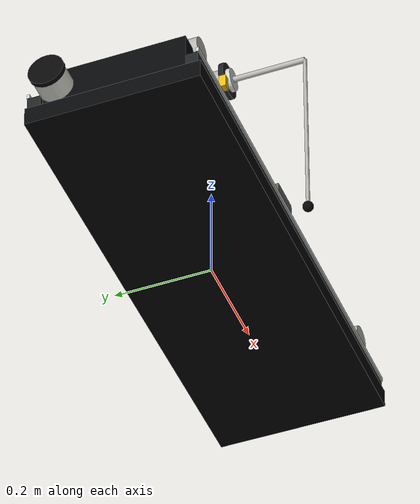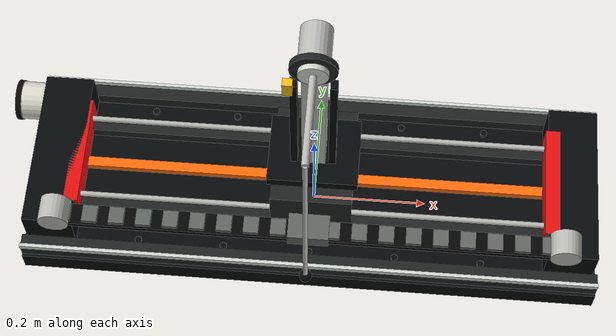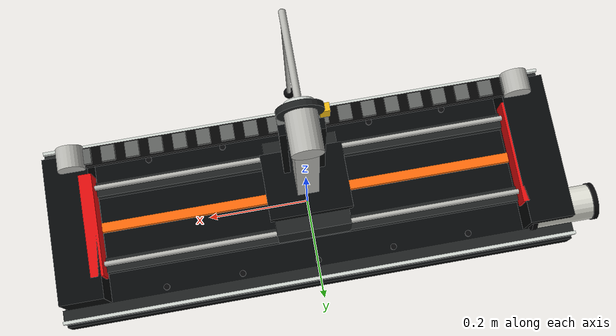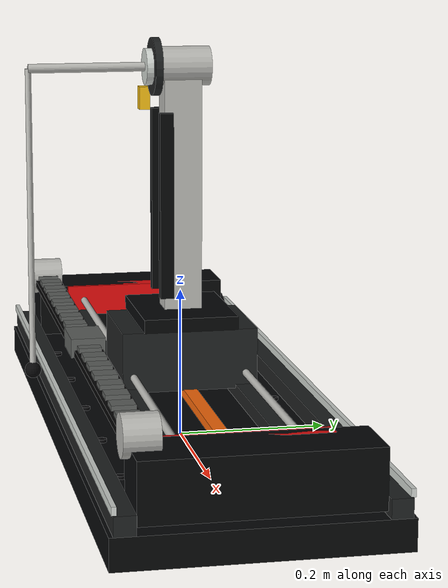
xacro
<?xml version="1.0"?>
<robot name="linear_inverted_pendulum" xmlns:xacro="http://www.ros.org/wiki/xacro">
  <xacro:property name="PI" value="3.141592653589793"/>

  <!-- Manual LIP01 values used here:
       rail travel 78 cm, base 1000 mm x 350 mm, rod D8 x 400 mm, rod mass 200 g. -->
  <xacro:property name="travel" value="0.78"/>
  <xacro:property name="base_length" value="1.00"/>
  <xacro:property name="base_width" value="0.35"/>
  <xacro:property name="base_height" value="0.04"/>
  <xacro:property name="rail_length" value="0.90"/>
  <xacro:property name="rail_radius" value="0.005"/>
  <xacro:property name="rail_y" value="0.075"/>
  <xacro:property name="rail_z" value="0.10"/>
  <xacro:property name="pivot_z" value="0.50"/>
  <xacro:property name="cart_mass" value="1.20"/>
  <xacro:property name="cart_x" value="0.14"/>
  <xacro:property name="cart_y" value="0.18"/>
  <xacro:property name="cart_z" value="0.08"/>
  <xacro:property name="pendulum_length" value="0.40"/>
  <xacro:property name="pendulum_radius" value="0.004"/>
  <xacro:property name="pendulum_mass" value="0.20"/>
  <xacro:property name="pendulum_y_offset" value="-0.20"/>
  <xacro:property name="pendulum_y_offset_abs" value="0.20"/>
  <xacro:property name="pendulum_coupler_radius" value="0.006"/>

  <material name="black">
    <color rgba="0.02 0.025 0.03 1"/>
  </material>
  <material name="orange">
    <color rgba="1.0 0.42 0.04 1"/>
  </material>
  <material name="steel">
    <color rgba="0.72 0.72 0.70 1"/>
  </material>
  <material name="blue">
    <color rgba="0.08 0.32 0.95 1"/>
  </material>
  <material name="red">
    <color rgba="0.9 0.05 0.05 1"/>
  </material>
  <material name="dark_gray">
    <color rgba="0.12 0.13 0.13 1"/>
  </material>
  <material name="rubber">
    <color rgba="0.01 0.01 0.01 1"/>
  </material>
  <material name="chain_steel">
    <color rgba="0.38 0.39 0.38 1"/>
  </material>
  <material name="aluminum">
    <color rgba="0.82 0.84 0.82 1"/>
  </material>
  <material name="brass">
    <color rgba="0.95 0.66 0.12 1"/>
  </material>
  <material name="yellow">
    <color rgba="0.95 0.74 0.08 1"/>
  </material>
  <material name="white">
    <color rgba="0.86 0.86 0.82 1"/>
  </material>
  <material name="screw_dark">
    <color rgba="0.03 0.03 0.035 1"/>
  </material>

  <xacro:macro name="box_inertia" params="mass x y z">
    <inertia
      ixx="${mass / 12.0 * (y*y + z*z)}" ixy="0" ixz="0"
      iyy="${mass / 12.0 * (x*x + z*z)}" iyz="0"
      izz="${mass / 12.0 * (x*x + y*y)}"/>
  </xacro:macro>

  <xacro:macro name="cylinder_z_inertia" params="mass radius length">
    <inertia
      ixx="${mass / 12.0 * (3.0*radius*radius + length*length)}" ixy="0" ixz="0"
      iyy="${mass / 12.0 * (3.0*radius*radius + length*length)}" iyz="0"
      izz="${0.5 * mass * radius * radius}"/>
  </xacro:macro>

  <xacro:macro name="screw_head" params="name x y z">
    <visual name="${name}">
      <origin xyz="${x} ${y} ${z}" rpy="0 0 0"/>
      <geometry>
        <cylinder radius="0.006" length="0.004"/>
      </geometry>
      <material name="screw_dark"/>
    </visual>
  </xacro:macro>

  <xacro:macro name="chain_link" params="name x y z">
    <visual name="${name}">
      <origin xyz="${x} ${y} ${z}" rpy="0 0 0"/>
      <geometry>
        <box size="0.026 0.030 0.006"/>
      </geometry>
      <material name="chain_steel"/>
    </visual>
  </xacro:macro>

  <link name="world"/>

  <joint name="world_to_base" type="fixed">
    <parent link="world"/>
    <child link="base_link"/>
    <origin xyz="0 0 0" rpy="0 0 0"/>
  </joint>

  <link name="base_link">
    <inertial>
      <origin xyz="0 0 ${base_height / 2.0}" rpy="0 0 0"/>
      <mass value="10.6"/>
      <xacro:box_inertia mass="10.6" x="${base_length}" y="${base_width}" z="${base_height}"/>
    </inertial>

    <visual name="base_plate">
      <origin xyz="0 0 ${base_height / 2.0}" rpy="0 0 0"/>
      <geometry>
        <box size="${base_length} ${base_width} ${base_height}"/>
      </geometry>
      <material name="black"/>
    </visual>
    <collision name="base_plate_collision">
      <origin xyz="0 0 ${base_height / 2.0}" rpy="0 0 0"/>
      <geometry>
        <box size="${base_length} ${base_width} ${base_height}"/>
      </geometry>
    </collision>

    <visual name="front_aluminum_extrusion">
      <origin xyz="0 ${base_width / 2.0 - 0.018} ${base_height + 0.012}" rpy="0 0 0"/>
      <geometry>
        <box size="${base_length} 0.026 0.024"/>
      </geometry>
      <material name="dark_gray"/>
    </visual>
    <visual name="rear_aluminum_extrusion">
      <origin xyz="0 ${-base_width / 2.0 + 0.018} ${base_height + 0.012}" rpy="0 0 0"/>
      <geometry>
        <box size="${base_length} 0.026 0.024"/>
      </geometry>
      <material name="dark_gray"/>
    </visual>
    <visual name="front_silver_edge">
      <origin xyz="0 ${base_width / 2.0 - 0.006} ${base_height + 0.030}" rpy="0 0 0"/>
      <geometry>
        <box size="${base_length} 0.006 0.010"/>
      </geometry>
      <material name="aluminum"/>
    </visual>
    <visual name="rear_silver_edge">
      <origin xyz="0 ${-base_width / 2.0 + 0.006} ${base_height + 0.030}" rpy="0 0 0"/>
      <geometry>
        <box size="${base_length} 0.006 0.010"/>
      </geometry>
      <material name="aluminum"/>
    </visual>
    <visual name="front_linear_rail_profile">
      <origin xyz="0 ${rail_y} ${rail_z - 0.025}" rpy="0 0 0"/>
      <geometry>
        <box size="${rail_length} 0.028 0.020"/>
      </geometry>
      <material name="dark_gray"/>
    </visual>
    <visual name="rear_linear_rail_profile">
      <origin xyz="0 ${-rail_y} ${rail_z - 0.025}" rpy="0 0 0"/>
      <geometry>
        <box size="${rail_length} 0.028 0.020"/>
      </geometry>
      <material name="dark_gray"/>
    </visual>
    <visual name="front_linear_shaft">
      <origin xyz="0 ${rail_y} ${rail_z}" rpy="0 ${PI / 2.0} 0"/>
      <geometry>
        <cylinder radius="${rail_radius}" length="${rail_length}"/>
      </geometry>
      <material name="steel"/>
    </visual>
    <visual name="rear_linear_shaft">
      <origin xyz="0 ${-rail_y} ${rail_z}" rpy="0 ${PI / 2.0} 0"/>
      <geometry>
        <cylinder radius="${rail_radius}" length="${rail_length}"/>
      </geometry>
      <material name="steel"/>
    </visual>
    <visual name="timing_belt">
      <origin xyz="0 0 ${rail_z - 0.025}" rpy="0 0 0"/>
      <geometry>
        <box size="${rail_length} 0.018 0.012"/>
      </geometry>
      <material name="orange"/>
    </visual>
    <visual name="chain_back_track">
      <origin xyz="0 -0.130 ${rail_z + 0.028}" rpy="0 0 0"/>
      <geometry>
        <box size="${rail_length} 0.038 0.009"/>
      </geometry>
      <material name="rubber"/>
    </visual>
    <xacro:chain_link name="chain_link_00" x="-0.420" y="-0.130" z="${rail_z + 0.036}"/>
    <xacro:chain_link name="chain_link_01" x="-0.374" y="-0.130" z="${rail_z + 0.036}"/>
    <xacro:chain_link name="chain_link_02" x="-0.328" y="-0.130" z="${rail_z + 0.036}"/>
    <xacro:chain_link name="chain_link_03" x="-0.282" y="-0.130" z="${rail_z + 0.036}"/>
    <xacro:chain_link name="chain_link_04" x="-0.236" y="-0.130" z="${rail_z + 0.036}"/>
    <xacro:chain_link name="chain_link_05" x="-0.190" y="-0.130" z="${rail_z + 0.036}"/>
    <xacro:chain_link name="chain_link_06" x="-0.144" y="-0.130" z="${rail_z + 0.036}"/>
    <xacro:chain_link name="chain_link_07" x="-0.098" y="-0.130" z="${rail_z + 0.036}"/>
    <xacro:chain_link name="chain_link_08" x="-0.052" y="-0.130" z="${rail_z + 0.036}"/>
    <xacro:chain_link name="chain_link_09" x="-0.006" y="-0.130" z="${rail_z + 0.036}"/>
    <xacro:chain_link name="chain_link_10" x="0.040" y="-0.130" z="${rail_z + 0.036}"/>
    <xacro:chain_link name="chain_link_11" x="0.086" y="-0.130" z="${rail_z + 0.036}"/>
    <xacro:chain_link name="chain_link_12" x="0.132" y="-0.130" z="${rail_z + 0.036}"/>
    <xacro:chain_link name="chain_link_13" x="0.178" y="-0.130" z="${rail_z + 0.036}"/>
    <xacro:chain_link name="chain_link_14" x="0.224" y="-0.130" z="${rail_z + 0.036}"/>
    <xacro:chain_link name="chain_link_15" x="0.270" y="-0.130" z="${rail_z + 0.036}"/>
    <xacro:chain_link name="chain_link_16" x="0.316" y="-0.130" z="${rail_z + 0.036}"/>
    <xacro:chain_link name="chain_link_17" x="0.362" y="-0.130" z="${rail_z + 0.036}"/>
    <xacro:chain_link name="chain_link_18" x="0.408" y="-0.130" z="${rail_z + 0.036}"/>
    <visual name="left_end_housing">
      <origin xyz="${-rail_length / 2.0} 0 ${rail_z - 0.015}" rpy="0 0 0"/>
      <geometry>
        <box size="0.085 0.285 0.075"/>
      </geometry>
      <material name="black"/>
    </visual>
    <visual name="right_end_housing">
      <origin xyz="${rail_length / 2.0} 0 ${rail_z - 0.015}" rpy="0 0 0"/>
      <geometry>
        <box size="0.085 0.285 0.075"/>
      </geometry>
      <material name="black"/>
    </visual>
    <visual name="left_chain_pulley">
      <origin xyz="${-rail_length / 2.0 + 0.015} -0.130 ${rail_z + 0.035}" rpy="${PI / 2.0} 0 0"/>
      <geometry>
        <cylinder radius="0.026" length="0.044"/>
      </geometry>
      <material name="steel"/>
    </visual>
    <visual name="right_chain_pulley">
      <origin xyz="${rail_length / 2.0 - 0.015} -0.130 ${rail_z + 0.035}" rpy="${PI / 2.0} 0 0"/>
      <geometry>
        <cylinder radius="0.026" length="0.044"/>
      </geometry>
      <material name="steel"/>
    </visual>
    <visual name="drive_motor_body">
      <origin xyz="${-rail_length / 2.0 - 0.030} ${base_width / 2.0 - 0.060} ${base_height + 0.040}" rpy="0 ${PI / 2.0} 0"/>
      <geometry>
        <cylinder radius="0.034" length="0.115"/>
      </geometry>
      <material name="white"/>
    </visual>
    <visual name="drive_motor_front_band">
      <origin xyz="${-rail_length / 2.0 - 0.090} ${base_width / 2.0 - 0.060} ${base_height + 0.040}" rpy="0 ${PI / 2.0} 0"/>
      <geometry>
        <cylinder radius="0.036" length="0.010"/>
      </geometry>
      <material name="screw_dark"/>
    </visual>
    <visual name="drive_motor_rear_band">
      <origin xyz="${-rail_length / 2.0 + 0.030} ${base_width / 2.0 - 0.060} ${base_height + 0.040}" rpy="0 ${PI / 2.0} 0"/>
      <geometry>
        <cylinder radius="0.036" length="0.010"/>
      </geometry>
      <material name="screw_dark"/>
    </visual>
    <visual name="left_limit_switch">
      <origin xyz="${-travel / 2.0 - 0.025} 0 ${rail_z}" rpy="0 0 0"/>
      <geometry>
        <box size="0.025 0.20 0.045"/>
      </geometry>
      <material name="red"/>
    </visual>
    <visual name="right_limit_switch">
      <origin xyz="${travel / 2.0 + 0.025} 0 ${rail_z}" rpy="0 0 0"/>
      <geometry>
        <box size="0.025 0.20 0.045"/>
      </geometry>
      <material name="red"/>
    </visual>
    <xacro:screw_head name="screw_front_00" x="-0.450" y="${base_width / 2.0 - 0.045}" z="${base_height + 0.003}"/>
    <xacro:screw_head name="screw_front_01" x="-0.300" y="${base_width / 2.0 - 0.045}" z="${base_height + 0.003}"/>
    <xacro:screw_head name="screw_front_02" x="-0.150" y="${base_width / 2.0 - 0.045}" z="${base_height + 0.003}"/>
    <xacro:screw_head name="screw_front_03" x="0.000" y="${base_width / 2.0 - 0.045}" z="${base_height + 0.003}"/>
    <xacro:screw_head name="screw_front_04" x="0.150" y="${base_width / 2.0 - 0.045}" z="${base_height + 0.003}"/>
    <xacro:screw_head name="screw_front_05" x="0.300" y="${base_width / 2.0 - 0.045}" z="${base_height + 0.003}"/>
    <xacro:screw_head name="screw_front_06" x="0.450" y="${base_width / 2.0 - 0.045}" z="${base_height + 0.003}"/>
    <xacro:screw_head name="screw_rear_00" x="-0.450" y="${-base_width / 2.0 + 0.045}" z="${base_height + 0.003}"/>
    <xacro:screw_head name="screw_rear_01" x="-0.300" y="${-base_width / 2.0 + 0.045}" z="${base_height + 0.003}"/>
    <xacro:screw_head name="screw_rear_02" x="-0.150" y="${-base_width / 2.0 + 0.045}" z="${base_height + 0.003}"/>
    <xacro:screw_head name="screw_rear_03" x="0.000" y="${-base_width / 2.0 + 0.045}" z="${base_height + 0.003}"/>
    <xacro:screw_head name="screw_rear_04" x="0.150" y="${-base_width / 2.0 + 0.045}" z="${base_height + 0.003}"/>
    <xacro:screw_head name="screw_rear_05" x="0.300" y="${-base_width / 2.0 + 0.045}" z="${base_height + 0.003}"/>
    <xacro:screw_head name="screw_rear_06" x="0.450" y="${-base_width / 2.0 + 0.045}" z="${base_height + 0.003}"/>
  </link>

  <joint name="cart_slider" type="prismatic">
    <parent link="base_link"/>
    <child link="cart_link"/>
    <origin xyz="0 0 ${pivot_z}" rpy="0 0 0"/>
    <axis xyz="1 0 0"/>
    <limit lower="${-travel / 2.0}" upper="${travel / 2.0}" effort="150.0" velocity="2.2"/>
    <dynamics damping="0.02" friction="0.0005"/>
  </joint>

  <link name="cart_link">
    <inertial>
      <origin xyz="0 0 -0.24" rpy="0 0 0"/>
      <mass value="${cart_mass}"/>
      <xacro:box_inertia mass="${cart_mass}" x="${cart_x}" y="${cart_y}" z="0.42"/>
    </inertial>

    <visual name="linear_bearing_carriage">
      <origin xyz="0 0 -0.38" rpy="0 0 0"/>
      <geometry>
        <box size="${cart_x} ${cart_y} ${cart_z}"/>
      </geometry>
      <material name="dark_gray"/>
    </visual>
    <collision name="linear_bearing_carriage_collision">
      <origin xyz="0 0 -0.38" rpy="0 0 0"/>
      <geometry>
        <box size="${cart_x} ${cart_y} ${cart_z}"/>
      </geometry>
    </collision>

    <visual name="carriage_top_plate">
      <origin xyz="0 0 -0.330" rpy="0 0 0"/>
      <geometry>
        <box size="0.155 0.125 0.018"/>
      </geometry>
      <material name="black"/>
    </visual>
    <visual name="front_bearing_sleeve">
      <origin xyz="0 ${rail_y} -0.400" rpy="0 ${PI / 2.0} 0"/>
      <geometry>
        <cylinder radius="0.014" length="0.120"/>
      </geometry>
      <material name="aluminum"/>
    </visual>
    <visual name="rear_bearing_sleeve">
      <origin xyz="0 ${-rail_y} -0.400" rpy="0 ${PI / 2.0} 0"/>
      <geometry>
        <cylinder radius="0.014" length="0.120"/>
      </geometry>
      <material name="aluminum"/>
    </visual>
    <visual name="carriage_belt_clamp">
      <origin xyz="0 -0.130 -0.365" rpy="0 0 0"/>
      <geometry>
        <box size="0.070 0.046 0.025"/>
      </geometry>
      <material name="chain_steel"/>
    </visual>
    <visual name="pendulum_encoder_bracket">
      <origin xyz="0 0 -0.19" rpy="0 0 0"/>
      <geometry>
        <box size="0.04 0.05 0.38"/>
      </geometry>
      <material name="steel"/>
    </visual>
    <collision name="pendulum_encoder_bracket_collision">
      <origin xyz="0 0 -0.19" rpy="0 0 0"/>
      <geometry>
        <box size="0.04 0.05 0.38"/>
      </geometry>
    </collision>

    <visual name="encoder_hub">
      <origin xyz="0 0 0" rpy="${PI / 2.0} 0 0"/>
      <geometry>
        <cylinder radius="0.026" length="0.075"/>
      </geometry>
      <material name="steel"/>
    </visual>
    <visual name="encoder_outer_disk">
      <origin xyz="0 -0.034 0" rpy="${PI / 2.0} 0 0"/>
      <geometry>
        <cylinder radius="0.038" length="0.010"/>
      </geometry>
      <material name="dark_gray"/>
    </visual>
    <visual name="encoder_inner_disk">
      <origin xyz="0 -0.042 0" rpy="${PI / 2.0} 0 0"/>
      <geometry>
        <cylinder radius="0.024" length="0.012"/>
      </geometry>
      <material name="aluminum"/>
    </visual>
    <visual name="pendulum_side_plate_left">
      <origin xyz="0.032 -0.025 -0.180" rpy="0 0 0"/>
      <geometry>
        <box size="0.012 0.018 0.245"/>
      </geometry>
      <material name="black"/>
    </visual>
    <visual name="pendulum_side_plate_right">
      <origin xyz="-0.032 -0.025 -0.180" rpy="0 0 0"/>
      <geometry>
        <box size="0.012 0.018 0.245"/>
      </geometry>
      <material name="black"/>
    </visual>
    <visual name="yellow_encoder_sensor">
      <origin xyz="-0.040 -0.042 -0.045" rpy="0 0 0"/>
      <geometry>
        <box size="0.016 0.014 0.030"/>
      </geometry>
      <material name="yellow"/>
    </visual>
  </link>

  <joint name="pendulum_hinge" type="continuous">
    <parent link="cart_link"/>
    <child link="pendulum_link"/>
    <origin xyz="0 0 0" rpy="0 0 0"/>
    <axis xyz="0 1 0"/>
    <dynamics damping="0.05" friction="0.0005"/>
  </joint>

  <link name="pendulum_link">
    <inertial>
      <origin xyz="0 ${pendulum_y_offset} ${-pendulum_length / 2.0}" rpy="0 0 0"/>
      <mass value="${pendulum_mass}"/>
      <xacro:cylinder_z_inertia mass="${pendulum_mass}" radius="${pendulum_radius}" length="${pendulum_length}"/>
    </inertial>
    <visual name="shaft_coupler_visual">
      <origin xyz="0 ${pendulum_y_offset / 2.0} 0" rpy="${PI / 2.0} 0 0"/>
      <geometry>
        <cylinder radius="${pendulum_coupler_radius}" length="${pendulum_y_offset_abs}"/>
      </geometry>
      <material name="steel"/>
    </visual>
    <collision name="shaft_coupler_collision">
      <origin xyz="0 ${pendulum_y_offset / 2.0} 0" rpy="${PI / 2.0} 0 0"/>
      <geometry>
        <cylinder radius="${pendulum_coupler_radius}" length="${pendulum_y_offset_abs}"/>
      </geometry>
    </collision>
    <visual name="rod_visual">
      <origin xyz="0 ${pendulum_y_offset} ${-pendulum_length / 2.0}" rpy="0 0 0"/>
      <geometry>
        <cylinder radius="${pendulum_radius}" length="${pendulum_length}"/>
      </geometry>
      <material name="steel"/>
    </visual>
    <collision name="rod_collision">
      <origin xyz="0 ${pendulum_y_offset} ${-pendulum_length / 2.0}" rpy="0 0 0"/>
      <geometry>
        <cylinder radius="${pendulum_radius}" length="${pendulum_length}"/>
      </geometry>
    </collision>
    <visual name="tip_marker">
      <origin xyz="0 ${pendulum_y_offset} ${-pendulum_length}" rpy="0 0 0"/>
      <geometry>
        <sphere radius="0.011"/>
      </geometry>
      <material name="screw_dark"/>
    </visual>
  </link>

  <gazebo reference="base_link">
    <material>
      <ambient>0.02 0.025 0.03 1</ambient>
      <diffuse>0.02 0.025 0.03 1</diffuse>
    </material>
  </gazebo>
  <gazebo reference="cart_link">
    <material>
      <ambient>0.18 0.18 0.18 1</ambient>
      <diffuse>0.18 0.18 0.18 1</diffuse>
    </material>
  </gazebo>
  <gazebo reference="pendulum_link">
    <material>
      <ambient>0.72 0.72 0.70 1</ambient>
      <diffuse>0.72 0.72 0.70 1</diffuse>
    </material>
  </gazebo>

  <gazebo>
    <plugin filename="gz-sim-joint-state-publisher-system" name="gz::sim::systems::JointStatePublisher">
      <joint_name>cart_slider</joint_name>
      <joint_name>pendulum_hinge</joint_name>
    </plugin>
    <plugin filename="gz-sim-apply-joint-force-system" name="gz::sim::systems::ApplyJointForce">
      <joint_name>cart_slider</joint_name>
    </plugin>
    <plugin filename="gz-sim-apply-joint-force-system" name="gz::sim::systems::ApplyJointForce">
      <joint_name>pendulum_hinge</joint_name>
    </plugin>
  </gazebo>
</robot>
